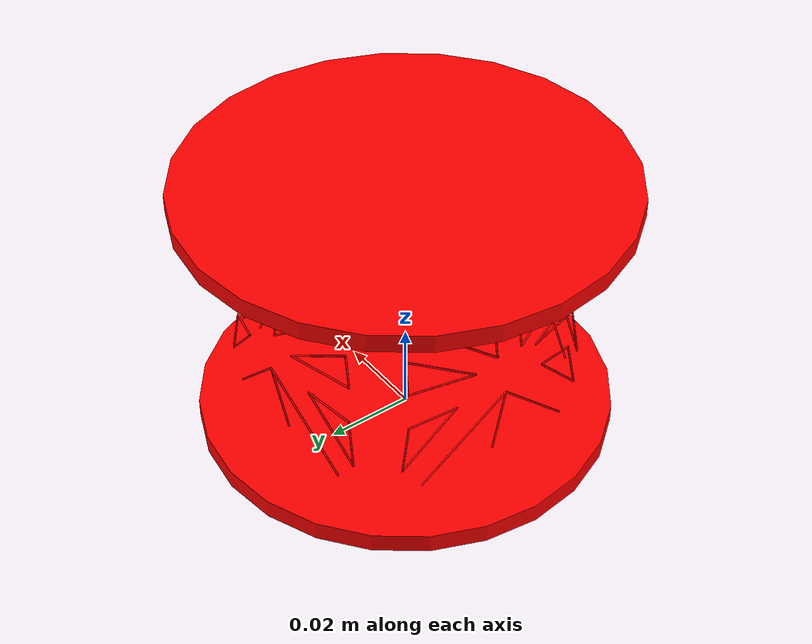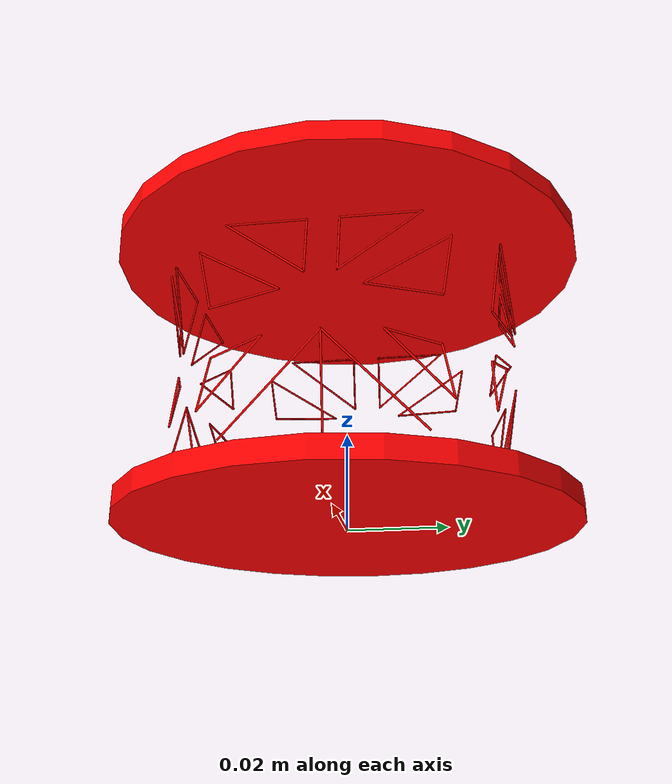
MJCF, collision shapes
<?xml version='1.0' encoding='utf-8'?>
<mujoco model="m1_module">
  <compiler angle="radian" coordinate="local" inertiafromgeom="false" balanceinertia="true" />
  <option timestep="0.001" gravity="0 0 -9.8" solver="Newton" />
  <size njmax="4000" nconmax="1000" />
  <default>
    <site type="sphere" size="0.0002" rgba="1 0 1 0" />
    <default class="vis_mesh">
      <geom type="mesh" contype="0" conaffinity="0" />
      </default>
    <default class="collision_capsule">
      <geom contype="1" conaffinity="1" solref="0.002 1" solimp="0.97 0.995 0.0005" friction="0.8 0.1 0.1" rgba="1 0 0 0" type="capsule" size="0.0002" margin="0.0001" />
      </default>
    <default class="collision_disk">
      <geom contype="1" conaffinity="1" solref="0.002 1" solimp="0.97 0.995 0.0005" friction="0.8 0.1 0.1" rgba="1 0 0 0" type="cylinder" />
      </default>
    <default class="m1">
      <joint springref="0" damping="4e-4" stiffness="0.015"  armature="2e-7" frictionloss="1e-3"/>
      <geom type="mesh" contype="0" conaffinity="0" />
      </default>
  </default>
  <asset>
    <mesh name="m1_seg2_m" file="../STL/rib_seg2.stl" scale="3.1039944 3.1039944 3.1039944" />
    <mesh name="m1_seg5L_m" file="../STL/rib_seg5L.stl" scale="3.1039944 3.1039944 3.1039944" />
    <mesh name="m1_seg5R_m" file="../STL/rib_seg5R.stl" scale="3.1039944 3.1039944 3.1039944" />
    <mesh name="m1_seg6_m" file="../STL/rib_seg6.stl" scale="3.1039944 3.1039944 3.1039944" />
    <mesh name="m1_seg4_m" file="../STL/rib_seg4.stl" scale="3.1039944 3.1039944 3.1039944" />
    <mesh name="m1_seg3L_m" file="../STL/rib_seg3L.stl" scale="3.1039944 3.1039944 3.1039944" />
    <mesh name="m1_seg3R_m" file="../STL/rib_seg3R.stl" scale="3.1039944 3.1039944 3.1039944" />
    <mesh name="m1_bottom" file="../STL/bottom_4x.stl" scale="3.1039944 3.1039944 3.1039944" />
    <mesh name="bottom1_col" file="../STL/bottom_collision.stl" scale="3.103994388566468 3.103994388566468 3.103994388566468" />
    <mesh name="m1_top" file="../STL/top_4x.stl" scale="3.103994388566468 3.103994388566468 3.103994388566468" />
  </asset>
  <worldbody>
  <body name="m1_bottom" pos="0 0 0" quat="1 0 0 0" childclass="m1">
    <geom mesh="m1_bottom"/>
    <geom name="disk1_bottom" class="collision_disk" pos="0 0 0.0021727961" size="0.046559916 0.0021727961" />
    <site name="rope1_1_bottom" pos="-0.0432525 -0.0115920 0"/>
    <site name="rope2_1_bottom" pos="0.0316620 -0.0316761 0"/>
    <site name="rope3_1_bottom" pos="0.0115879 0.0432623 0"/>
    <inertial mass="0.014848159" pos="0 0 0.0015855203" fullinertia="3.7139942e-08 3.7139942e-08 2.5438316e-11 0 0 0" />
    <body name="m1_seg2" pos="2.82567101e-05 -3.24512615e-02 1.86685601e-02" quat="9.99991490e-01 -4.12540915e-03 -1.52357895e-05 6.30362730e-06">
      <inertial mass="0.0015336127" pos="-1.9089565e-05 0.0014327107 -0.0046802027" fullinertia="7.0972903e-08 2.492955e-07 1.8493656e-07 0 0 -1.3991074e-08" />
      <joint name="m1_j_bottom_seg2" type="hinge" pos="-2.86542e-05 0.00296094 -0.0143462" axis="1 0 0" limited="true" range="-0.2 1.2" />
      <geom mesh="m1_seg2_m"/>
      <geom class="collision_capsule" fromto="0 0.0012415978 -0.0093119832 0 -0.0024831955 0.0093119832" />
      <geom class="collision_capsule" fromto="0.018623966 0.0012415978 -0.0093119832 0 -0.0024831955 0.0093119832" />
      <geom class="collision_capsule" fromto="-0.018623966 0.0012415978 -0.0093119832 0 -0.0024831955 0.0093119832" />
      <body name="m1_seg3L"  pos="-1.31683590e-02 5.04228292e-04 6.55915134e-03"  quat="9.99992509e-01 3.80275225e-03 -6.75333410e-04 2.53543553e-04">
        <inertial mass="0.00055767735" pos="-0.0043363422 0.0016619407 -0.0026744016" fullinertia="2.1622569e-08 3.7648708e-08 1.9078737e-08 -4.5788969e-09 1.2973541e-08 -1.7806821e-09" />
        <joint name="m1_j_seg2_seg3L" type="hinge" pos="-0.001022 -0.000563533 -0.00655227" axis="-0.67953742 0.14994959 -0.7181532" limited="true" range="0 2.3" />
        <geom mesh="m1_seg3L_m" />
        <geom class="collision_capsule" fromto="-0.008 0.002 0.0005 0.002 -0.001 0.003" />
        <geom class="collision_capsule" fromto="-0.008 0.002 0.0005 -0.01 0.0015 -0.01" />
        <geom class="collision_capsule" fromto="0.002 -0.001 0.003 -0.01 0.0015 -0.01"/>
        <body name="m1_seg4"  pos="-5.94925460e-04 -5.89429943e-04 1.34424211e-02"   quat="9.99998989e-01 -5.45000526e-04 1.28441048e-03 -2.75984413e-04">
          <inertial mass="0.00062738702" pos="-0.0043554318 0.0014518003 0.0014709209" fullinertia="2.0605036e-08 4.0446923e-08 2.3403251e-08 -4.0701306e-09 -1.1192859e-08 -1.2719158e-09" />
          <joint name="m1_j_seg3L_seg4" type="hinge" pos="0.00161419 0.00116527 -0.00688657" axis="-0.93308026 0.32845604 -0.14655325" limited="true" range="-2.3 0" />
          <geom mesh="m1_seg4_m"/>
          <geom class="collision_capsule" fromto="-0.01 0.0003 0.008 0.006 -0.002 -0.002" />
          <geom class="collision_capsule" fromto="-0.01 0.0003 0.008 -0.008 0.002 -0.003" />
          <geom class="collision_capsule" fromto="0.006 -0.002 -0.002 -0.008 0.002 -0.003"/>
          <body name="m1_seg5L"  pos="1.37447347e-02 -1.15027080e-03 6.95052670e-03" quat="-2.03688796e-04 -1.49606636e-03 -9.35921620e-04 9.99998422e-01">
            <inertial mass="0.00079689305" pos="0.0096278146 -0.0010697606 0.0037441622" fullinertia="2.3263971e-08 6.0098582e-08 3.8773285e-08 -2.2617749e-09 1.4539982e-08 -3.5542187e-09" />
            <joint name="m1_j_seg4_seg5L" type="hinge" pos="0.0153778 9.55141e-06 -2.86542e-05" axis="0.78792329 -0.098891322 0.60778072" limited="true" range="0 2.3" />
            <geom mesh="m1_seg5L_m"/>
            <geom class="collision_capsule" fromto="0.0031039944 -0.00062079888 0.0062079888 0.0031039944 0.0017415978 -0.0062079888" />
            <geom class="collision_capsule" fromto="0.018623966 -0.00062079888 0.0062079888 0.0031039944 -0.00062079888 0.0062079888" />
            <geom class="collision_capsule" fromto="0.018623966 -0.00062079888 0.0062079888 0.0031039944 0.0017415978 -0.0062079888" />
            <site name="m1_h5Ltop_b1" pos="0.0095896044 -0.0017956608 0.011404386" />
            <site name="m1_h5Ltop_b2" pos="0.018901588 -0.0017956608 0.011404386" />
            </body>
          </body>
        </body>
      <body name="m1_seg3R"   pos="1.31400352e-02 5.24306929e-04 6.56619006e-03" quat="2.70030059e-04 6.97410913e-04 -3.80717348e-03 9.99992473e-01">
        <inertial mass="0.00065893204" pos="-0.0043172527 -0.0016619407 -0.0026744016" fullinertia="2.5548464e-08 4.4183837e-08 2.2542767e-08 5.4102644e-09 1.5329084e-08 2.1039917e-09" />
        <joint name="m1_j_seg2_seg3R" type="hinge" pos="-0.00105066 0.000563533 -0.00656182" axis="-0.67798864 -0.1493788 -0.71973424" limited="true" range="-2.3 0" />
        <geom mesh="m1_seg3R_m" />
        <geom class="collision_capsule" fromto="-0.008 -0.002 0.0006 0.002 0.001 0.003" />
        <geom class="collision_capsule" fromto="-0.008 -0.002 0.0006 -0.01 -0.0015 -0.01" />
        <geom class="collision_capsule" fromto="0.002 0.001 0.003 -0.01 -0.0015 -0.01"/>
        <body name="m1_seg6"  pos="-5.68514536e-04 5.95035466e-04 1.34636207e-02" quat="3.18125138e-04 -1.28611439e-03 5.84129138e-04 -9.99998952e-01">
          <inertial mass="0.00062738702" pos="0.004393642 0.0014518003 0.0014900104" fullinertia="2.0605036e-08 4.0446923e-08 2.3403251e-08 4.0701306e-09 1.1192859e-08 -1.2719158e-09" />
          <joint name="m1_j_seg3R_seg6" type="hinge" pos="-0.00161419 0.00116527 -0.00687702" axis="0.93297932 0.3284205 -0.14727377" limited="true" range="0 2.3" />
          <geom mesh="m1_seg6_m" />
          <geom class="collision_capsule" fromto="0.01 0.0005 0.008 -0.006 -0.002 -0.002" />
          <geom class="collision_capsule" fromto="0.01 0.0005 0.008 0.008 0.0025 -0.003" />
          <geom class="collision_capsule" fromto="-0.006 -0.002 -0.002 0.008 0.0025 -0.003"/>
          <body name="m1_seg5R"  pos="-1.37544515e-02 -1.16536643e-03 6.90631225e-03" quat="2.80900148e-04 1.53293116e-03 -9.96463485e-04 9.99998289e-01">
            <inertial mass="0.00079637023" pos="-0.0095514253 -0.0010697606 0.0037441622" fullinertia="2.324883e-08 6.0059483e-08 3.8425162e-08 2.260303e-09 -1.4207618e-08 -3.5519038e-09" />
            <joint name="m1_j_seg5R_seg6" type="hinge" pos="-0.01538 -0.00000955 0.00002866" axis="-0.786101 -0.099797 0.609989" limited="true" range="-2.3 0"/>
            <geom mesh="m1_seg5R_m"/>
            <geom class="collision_capsule" fromto="-0.0031039944 -0.00062079888 0.0062079888 -0.0031039944 0.0017415978 -0.0062079888"/>
            <geom class="collision_capsule" fromto="-0.018623966 -0.00062079888 0.0062079888 -0.0031039944 -0.00062079888 0.0062079888"/>
            <geom class="collision_capsule" fromto="-0.018623966 -0.00062079888 0.0062079888 -0.0031039944 0.0017415978 -0.0062079888"/>
            <site name="m1_h5Rtop_b1" pos="-0.0095132151 -0.0017956608 0.011404386" />
            <site name="m1_h5Rtop_b2" pos="-0.018825198 -0.0017956608 0.011404386" />
            </body>
          </body>
        </body>
      </body>
    <body name="m1_seg2_r1" pos="0.032451262 2.825671e-05 0.01866856" quat="0.70709631 -0.0029063315 -0.0029278781 0.70710522">
        <inertial mass="0.0015336127" pos="-1.9089565e-05 0.0014327107 -0.0046802027" fullinertia="7.0972903e-08 2.492955e-07 1.8493656e-07 0 0 -1.3991074e-08" />
        <joint name="m1_j_bottom_seg2_r1" type="hinge" pos="-2.86542e-05 0.00296094 -0.0143462" axis="1 0 0" limited="true" range="-0.2 1.2" />
        <geom mesh="m1_seg2_m"/>
        <geom class="collision_capsule" fromto="0 0.0012415978 -0.0093119832 0 -0.0024831955 0.0093119832" />
        <geom class="collision_capsule" fromto="0.018623966 0.0012415978 -0.0093119832 0 -0.0024831955 0.0093119832" />
        <geom class="collision_capsule" fromto="-0.018623966 0.0012415978 -0.0093119832 0 -0.0024831955 0.0093119832" />
        <body name="m1_seg3L_r1" pos="-0.013168359 0.00050422829 0.0065591513" quat="0.99999251 0.0038027522 -0.00067533341 0.00025354355">
          <inertial mass="0.00055767735" pos="-0.0043363422 0.0016619407 -0.0026744016" fullinertia="2.1622569e-08 3.7648708e-08 1.9078737e-08 -4.5788969e-09 1.2973541e-08 -1.7806821e-09" />
          <joint name="m1_j_seg2_seg3L_r1" type="hinge" pos="-0.001022 -0.000563533 -0.00655227" axis="-0.67953742 0.14994959 -0.7181532" limited="true" range="0 2.3" />
          <geom mesh="m1_seg3L_m" />
          <geom class="collision_capsule" fromto="-0.008 0.002 0.0005 0.002 -0.001 0.003" />
          <geom class="collision_capsule" fromto="-0.008 0.002 0.0005 -0.01 0.0015 -0.01" />
          <geom class="collision_capsule" fromto="0.002 -0.001 0.003 -0.01 0.0015 -0.01"/>
          <body name="m1_seg4_r1" pos="-0.00059492546 -0.00058942994 0.013442421" quat="0.99999899 -0.00054500053 0.0012844105 -0.00027598441">
            <inertial mass="0.00062738702" pos="-0.0043554318 0.0014518003 0.0014709209" fullinertia="2.0605036e-08 4.0446923e-08 2.3403251e-08 -4.0701306e-09 -1.1192859e-08 -1.2719158e-09" />
            <joint name="m1_j_seg3L_seg4_r1" type="hinge" pos="0.00161419 0.00116527 -0.00688657" axis="-0.93308026 0.32845604 -0.14655325" limited="true" range="-2.3 0" />
            <geom mesh="m1_seg4_m" />
            <geom class="collision_capsule" fromto="-0.01 0.0003 0.008 0.006 -0.002 -0.002" />
            <geom class="collision_capsule" fromto="-0.01 0.0003 0.008 -0.008 0.002 -0.003" />
            <geom class="collision_capsule" fromto="0.006 -0.002 -0.002 -0.008 0.002 -0.003"/>
            <body name="m1_seg5L_r1" pos="0.013744735 -0.0011502708 0.0069505267" quat="-0.0002036888 -0.0014960664 -0.00093592162 0.99999842">
              <inertial mass="0.00079689305" pos="0.0096278146 -0.0010697606 0.0037441622" fullinertia="2.3263971e-08 6.0098582e-08 3.8773285e-08 -2.2617749e-09 1.4539982e-08 -3.5542187e-09" />
              <joint name="m1_j_seg4_seg5L_r1" type="hinge" pos="0.0153778 9.55141e-06 -2.86542e-05" axis="0.78792329 -0.098891322 0.60778072" limited="true" range="0 2.3" />
              <geom mesh="m1_seg5L_m"/>
              <geom class="collision_capsule" fromto="0.0031039944 -0.00062079888 0.0062079888 0.0031039944 0.0017415978 -0.0062079888" />
              <geom class="collision_capsule" fromto="0.018623966 -0.00062079888 0.0062079888 0.0031039944 -0.00062079888 0.0062079888" />
              <geom class="collision_capsule" fromto="0.018623966 -0.00062079888 0.0062079888 0.0031039944 0.0017415978 -0.0062079888" />
              <site name="m1_h5Ltop_b1_r1" pos="0.0095896044 -0.0017956608 0.011404386" />
              <site name="m1_h5Ltop_b2_r1" pos="0.018901588 -0.0017956608 0.011404386" />
            </body>
          </body>
        </body>
        <body name="m1_seg3R_r1" pos="0.013140035 0.00052430693 0.0065661901" quat="0.00027003006 0.00069741091 -0.0038071735 0.99999247">
          <inertial mass="0.00065893204" pos="-0.0043172527 -0.0016619407 -0.0026744016" fullinertia="2.5548464e-08 4.4183837e-08 2.2542767e-08 5.4102644e-09 1.5329084e-08 2.1039917e-09" />
          <joint name="m1_j_seg2_seg3R_r1" type="hinge" pos="-0.00105066 0.000563533 -0.00656182" axis="-0.67798864 -0.1493788 -0.71973424" limited="true" range="-2.3 0" />
          <geom mesh="m1_seg3R_m" />
          <geom class="collision_capsule" fromto="-0.008 -0.002 0.0006 0.002 0.001 0.003" />
          <geom class="collision_capsule" fromto="-0.008 -0.002 0.0006 -0.01 -0.0015 -0.01" />
          <geom class="collision_capsule" fromto="0.002 0.001 0.003 -0.01 -0.0015 -0.01"/>
          <body name="m1_seg6_r1" pos="-0.00056851454 0.00059503547 0.013463621" quat="0.00031812514 -0.0012861144 0.00058412914 -0.99999895">
            <inertial mass="0.00062738702" pos="0.004393642 0.0014518003 0.0014900104" fullinertia="2.0605036e-08 4.0446923e-08 2.3403251e-08 4.0701306e-09 1.1192859e-08 -1.2719158e-09" />
            <joint name="m1_j_seg3R_seg6_r1" type="hinge" pos="-0.00161419 0.00116527 -0.00687702" axis="0.93297932 0.3284205 -0.14727377" limited="true" range="0 2.3" />
            <geom mesh="m1_seg6_m" />
            <geom class="collision_capsule" fromto="0.01 0.0005 0.008 -0.006 -0.002 -0.002" />
            <geom class="collision_capsule" fromto="0.01 0.0005 0.008 0.008 0.0025 -0.003" />
            <geom class="collision_capsule" fromto="-0.006 -0.002 -0.002 0.008 0.0025 -0.003"/>
            <body name="m1_seg5R_r1" pos="-0.013754452 -0.0011653664 0.0069063123" quat="0.00028090015 0.0015329312 -0.00099646348 0.99999829">
              <inertial mass="0.00079637023" pos="-0.0095514253 -0.0010697606 0.0037441622" fullinertia="2.324883e-08 6.0059483e-08 3.8425162e-08 2.260303e-09 -1.4207618e-08 -3.5519038e-09" />
              <joint name="m1_j_seg5R_seg6_r1"   type="hinge" pos="-0.01538 -0.00000955 0.00002866"  axis="-0.786101 -0.099797 0.609989"   limited="true" range="-2.3 0"/>
              <geom mesh="m1_seg5R_m"/>
              <geom class="collision_capsule" fromto="-0.0031039944 -0.00062079888 0.0062079888 -0.0031039944 0.0017415978 -0.0062079888"/>
              <geom class="collision_capsule" fromto="-0.018623966 -0.00062079888 0.0062079888 -0.0031039944 -0.00062079888 0.0062079888"/>
              <geom class="collision_capsule" fromto="-0.018623966 -0.00062079888 0.0062079888 -0.0031039944 0.0017415978 -0.0062079888"/>
              <site name="m1_h5Rtop_b1_r1" pos="-0.0095132151 -0.0017956608 0.011404386" />
              <site name="m1_h5Rtop_b2_r1" pos="-0.018825198 -0.0017956608 0.011404386" />
            </body>
          </body>
        </body>
      </body>
    <body name="m1_seg2_r2" pos="-2.825671e-05 0.032451262 0.01866856" quat="-6.3036273e-06 1.523579e-05 -0.0041254092 0.99999149">
        <inertial mass="0.0015336127" pos="-1.9089565e-05 0.0014327107 -0.0046802027" fullinertia="7.0972903e-08 2.492955e-07 1.8493656e-07 0 0 -1.3991074e-08" />
        <joint name="m1_j_bottom_seg2_r2" type="hinge" pos="-2.86542e-05 0.00296094 -0.0143462" axis="1 0 0" limited="true" range="-0.2 1.2" />
        <geom mesh="m1_seg2_m"/>
        <geom class="collision_capsule" fromto="0 0.0012415978 -0.0093119832 0 -0.0024831955 0.0093119832" />
        <geom class="collision_capsule" fromto="0.018623966 0.0012415978 -0.0093119832 0 -0.0024831955 0.0093119832" />
        <geom class="collision_capsule" fromto="-0.018623966 0.0012415978 -0.0093119832 0 -0.0024831955 0.0093119832" />
        <body name="m1_seg3L_r2" pos="-0.013168359 0.00050422829 0.0065591513" quat="0.99999251 0.0038027522 -0.00067533341 0.00025354355">
          <inertial mass="0.00055767735" pos="-0.0043363422 0.0016619407 -0.0026744016" fullinertia="2.1622569e-08 3.7648708e-08 1.9078737e-08 -4.5788969e-09 1.2973541e-08 -1.7806821e-09" />
          <joint name="m1_j_seg2_seg3L_r2" type="hinge" pos="-0.001022 -0.000563533 -0.00655227" axis="-0.67953742 0.14994959 -0.7181532" limited="true" range="0 2.3" />
          <geom mesh="m1_seg3L_m" />
          <geom class="collision_capsule" fromto="-0.008 0.002 0.0005 0.002 -0.001 0.003" />
          <geom class="collision_capsule" fromto="-0.008 0.002 0.0005 -0.01 0.0015 -0.01" />
          <geom class="collision_capsule" fromto="0.002 -0.001 0.003 -0.01 0.0015 -0.01"/>
          <body name="m1_seg4_r2" pos="-0.00059492546 -0.00058942994 0.013442421" quat="0.99999899 -0.00054500053 0.0012844105 -0.00027598441">
            <inertial mass="0.00062738702" pos="-0.0043554318 0.0014518003 0.0014709209" fullinertia="2.0605036e-08 4.0446923e-08 2.3403251e-08 -4.0701306e-09 -1.1192859e-08 -1.2719158e-09" />
            <joint name="m1_j_seg3L_seg4_r2" type="hinge" pos="0.00161419 0.00116527 -0.00688657" axis="-0.93308026 0.32845604 -0.14655325" limited="true" range="-2.3 0" />
            <geom mesh="m1_seg4_m" />
            <geom class="collision_capsule" fromto="-0.01 0.0003 0.008 0.006 -0.002 -0.002" />
            <geom class="collision_capsule" fromto="-0.01 0.0003 0.008 -0.008 0.002 -0.003" />
            <geom class="collision_capsule" fromto="0.006 -0.002 -0.002 -0.008 0.002 -0.003"/>
            <body name="m1_seg5L_r2" pos="0.013744735 -0.0011502708 0.0069505267" quat="-0.0002036888 -0.0014960664 -0.00093592162 0.99999842">
              <inertial mass="0.00079689305" pos="0.0096278146 -0.0010697606 0.0037441622" fullinertia="2.3263971e-08 6.0098582e-08 3.8773285e-08 -2.2617749e-09 1.4539982e-08 -3.5542187e-09" />
              <joint name="m1_j_seg4_seg5L_r2" type="hinge" pos="0.0153778 9.55141e-06 -2.86542e-05" axis="0.78792329 -0.098891322 0.60778072" limited="true" range="0 2.3" />
              <geom mesh="m1_seg5L_m"/>
              <geom class="collision_capsule" fromto="0.0031039944 -0.00062079888 0.0062079888 0.0031039944 0.0017415978 -0.0062079888" />
              <geom class="collision_capsule" fromto="0.018623966 -0.00062079888 0.0062079888 0.0031039944 -0.00062079888 0.0062079888" />
              <geom class="collision_capsule" fromto="0.018623966 -0.00062079888 0.0062079888 0.0031039944 0.0017415978 -0.0062079888" />
              <site name="m1_h5Ltop_b1_r2" pos="0.0095896044 -0.0017956608 0.011404386" />
              <site name="m1_h5Ltop_b2_r2" pos="0.018901588 -0.0017956608 0.011404386" />
            </body>
          </body>
        </body>
        <body name="m1_seg3R_r2" pos="0.013140035 0.00052430693 0.0065661901" quat="0.00027003006 0.00069741091 -0.0038071735 0.99999247">
          <inertial mass="0.00065893204" pos="-0.0043172527 -0.0016619407 -0.0026744016" fullinertia="2.5548464e-08 4.4183837e-08 2.2542767e-08 5.4102644e-09 1.5329084e-08 2.1039917e-09" />
          <joint name="m1_j_seg2_seg3R_r2" type="hinge" pos="-0.00105066 0.000563533 -0.00656182" axis="-0.67798864 -0.1493788 -0.71973424" limited="true" range="-2.3 0" />
          <geom mesh="m1_seg3R_m" />
          <geom class="collision_capsule" fromto="-0.008 -0.002 0.0006 0.002 0.001 0.003" />
          <geom class="collision_capsule" fromto="-0.008 -0.002 0.0006 -0.01 -0.0015 -0.01" />
          <geom class="collision_capsule" fromto="0.002 0.001 0.003 -0.01 -0.0015 -0.01"/>
          <body name="m1_seg6_r2" pos="-0.00056851454 0.00059503547 0.013463621" quat="0.00031812514 -0.0012861144 0.00058412914 -0.99999895">
            <inertial mass="0.00062738702" pos="0.004393642 0.0014518003 0.0014900104" fullinertia="2.0605036e-08 4.0446923e-08 2.3403251e-08 4.0701306e-09 1.1192859e-08 -1.2719158e-09" />
            <joint name="m1_j_seg3R_seg6_r2" type="hinge" pos="-0.00161419 0.00116527 -0.00687702" axis="0.93297932 0.3284205 -0.14727377" limited="true" range="0 2.3" />
            <geom mesh="m1_seg6_m" />
            <geom class="collision_capsule" fromto="0.01 0.0005 0.008 -0.006 -0.002 -0.002" />
            <geom class="collision_capsule" fromto="0.01 0.0005 0.008 0.008 0.0025 -0.003" />
            <geom class="collision_capsule" fromto="-0.006 -0.002 -0.002 0.008 0.0025 -0.003"/>
            <body name="m1_seg5R_r2" pos="-0.013754452 -0.0011653664 0.0069063123" quat="0.00028090015 0.0015329312 -0.00099646348 0.99999829">
              <inertial mass="0.00079637023" pos="-0.0095514253 -0.0010697606 0.0037441622" fullinertia="2.324883e-08 6.0059483e-08 3.8425162e-08 2.260303e-09 -1.4207618e-08 -3.5519038e-09" />
              <joint name="m1_j_seg5R_seg6_r2" type="hinge" pos="-0.01538 -0.00000955 0.00002866" axis="-0.786101 -0.099797 0.609989" limited="true" range="-2.3 0"/>
              <geom mesh="m1_seg5R_m"/>
              <geom class="collision_capsule" fromto="-0.0031039944 -0.00062079888 0.0062079888 -0.0031039944 0.0017415978 -0.0062079888"/>
              <geom class="collision_capsule" fromto="-0.018623966 -0.00062079888 0.0062079888 -0.0031039944 -0.00062079888 0.0062079888"/>
              <geom class="collision_capsule" fromto="-0.018623966 -0.00062079888 0.0062079888 -0.0031039944 0.0017415978 -0.0062079888"/>
              <site name="m1_h5Rtop_b1_r2" pos="-0.0095132151 -0.0017956608 0.011404386" />
              <site name="m1_h5Rtop_b2_r2" pos="-0.018825198 -0.0017956608 0.011404386" />
            </body>
          </body>
        </body>
      </body>
    <body name="m1_seg2_r3" pos="-0.032451262 -2.825671e-05 0.01866856" quat="-0.70710522 0.0029278781 -0.0029063315 0.70709631">
        <inertial mass="0.0015336127" pos="-1.9089565e-05 0.0014327107 -0.0046802027" fullinertia="7.0972903e-08 2.492955e-07 1.8493656e-07 0 0 -1.3991074e-08" />
        <joint name="m1_j_bottom_seg2_r3" type="hinge" pos="-2.86542e-05 0.00296094 -0.0143462" axis="1 0 0" limited="true" range="-0.2 1.2" />
        <geom mesh="m1_seg2_m"  />
        <geom class="collision_capsule" fromto="0 0.0012415978 -0.0093119832 0 -0.0024831955 0.0093119832" />
        <geom class="collision_capsule" fromto="0.018623966 0.0012415978 -0.0093119832 0 -0.0024831955 0.0093119832" />
        <geom class="collision_capsule" fromto="-0.018623966 0.0012415978 -0.0093119832 0 -0.0024831955 0.0093119832" />
        <body name="m1_seg3L_r3" pos="-0.013168359 0.00050422829 0.0065591513" quat="0.99999251 0.0038027522 -0.00067533341 0.00025354355">
          <inertial mass="0.00055767735" pos="-0.0043363422 0.0016619407 -0.0026744016" fullinertia="2.1622569e-08 3.7648708e-08 1.9078737e-08 -4.5788969e-09 1.2973541e-08 -1.7806821e-09" />
          <joint name="m1_j_seg2_seg3L_r3" type="hinge" pos="-0.001022 -0.000563533 -0.00655227" axis="-0.67953742 0.14994959 -0.7181532" limited="true" range="0 2.3" />
          <geom mesh="m1_seg3L_m" />
          <geom class="collision_capsule" fromto="-0.008 0.002 0.0005 0.002 -0.001 0.003" />
          <geom class="collision_capsule" fromto="-0.008 0.002 0.0005 -0.01 0.0015 -0.01" />
          <geom class="collision_capsule" fromto="0.002 -0.001 0.003 -0.01 0.0015 -0.01"/>
          <body name="m1_seg4_r3" pos="-0.00059492546 -0.00058942994 0.013442421" quat="0.99999899 -0.00054500053 0.0012844105 -0.00027598441">
            <inertial mass="0.00062738702" pos="-0.0043554318 0.0014518003 0.0014709209" fullinertia="2.0605036e-08 4.0446923e-08 2.3403251e-08 -4.0701306e-09 -1.1192859e-08 -1.2719158e-09" />
            <joint name="m1_j_seg3L_seg4_r3" type="hinge" pos="0.00161419 0.00116527 -0.00688657" axis="-0.93308026 0.32845604 -0.14655325" limited="true" range="-2.3 0" />
            <geom mesh="m1_seg4_m" />
            <geom class="collision_capsule" fromto="-0.01 0.0003 0.008 0.006 -0.002 -0.002" />
            <geom class="collision_capsule" fromto="-0.01 0.0003 0.008 -0.008 0.002 -0.003" />
            <geom class="collision_capsule" fromto="0.006 -0.002 -0.002 -0.008 0.002 -0.003"/>
            <body name="m1_seg5L_r3" pos="0.013744735 -0.0011502708 0.0069505267" quat="-0.0002036888 -0.0014960664 -0.00093592162 0.99999842">
              <inertial mass="0.00079689305" pos="0.0096278146 -0.0010697606 0.0037441622" fullinertia="2.3263971e-08 6.0098582e-08 3.8773285e-08 -2.2617749e-09 1.4539982e-08 -3.5542187e-09" />
              <joint name="m1_j_seg4_seg5L_r3" type="hinge" pos="0.0153778 9.55141e-06 -2.86542e-05" axis="0.78792329 -0.098891322 0.60778072" limited="true" range="0 2.3" />
              <geom mesh="m1_seg5L_m"/>
              <geom class="collision_capsule" fromto="0.0031039944 -0.00062079888 0.0062079888 0.0031039944 0.0017415978 -0.0062079888" />
              <geom class="collision_capsule" fromto="0.018623966 -0.00062079888 0.0062079888 0.0031039944 -0.00062079888 0.0062079888" />
              <geom class="collision_capsule" fromto="0.018623966 -0.00062079888 0.0062079888 0.0031039944 0.0017415978 -0.0062079888" />
              <site name="m1_h5Ltop_b1_r3" pos="0.0095896044 -0.0017956608 0.011404386" />
              <site name="m1_h5Ltop_b2_r3" pos="0.018901588 -0.0017956608 0.011404386" />
            </body>
          </body>
      </body>
      <body name="m1_seg3R_r3" pos="0.013140035 0.00052430693 0.0065661901" quat="0.00027003006 0.00069741091 -0.0038071735 0.99999247">
          <inertial mass="0.00065893204" pos="-0.0043172527 -0.0016619407 -0.0026744016" fullinertia="2.5548464e-08 4.4183837e-08 2.2542767e-08 5.4102644e-09 1.5329084e-08 2.1039917e-09" />
          <joint name="m1_j_seg2_seg3R_r3" type="hinge" pos="-0.00105066 0.000563533 -0.00656182" axis="-0.67798864 -0.1493788 -0.71973424" limited="true" range="-2.3 0" />
          <geom mesh="m1_seg3R_m" />
          <geom class="collision_capsule" fromto="-0.008 -0.002 0.0006 0.002 0.001 0.003" />
          <geom class="collision_capsule" fromto="-0.008 -0.002 0.0006 -0.01 -0.0015 -0.01" />
          <geom class="collision_capsule" fromto="0.002 0.001 0.003 -0.01 -0.0015 -0.01"/>
          <body name="m1_seg6_r3" pos="-0.00056851454 0.00059503547 0.013463621" quat="0.00031812514 -0.0012861144 0.00058412914 -0.99999895">
            <inertial mass="0.00062738702" pos="0.004393642 0.0014518003 0.0014900104" fullinertia="2.0605036e-08 4.0446923e-08 2.3403251e-08 4.0701306e-09 1.1192859e-08 -1.2719158e-09" />
            <joint name="m1_j_seg3R_seg6_r3" type="hinge" pos="-0.00161419 0.00116527 -0.00687702" axis="0.93297932 0.3284205 -0.14727377" limited="true" range="0 2.3" />
            <geom mesh="m1_seg6_m" />
            <geom class="collision_capsule" fromto="0.01 0.0005 0.008 -0.006 -0.002 -0.002" />
            <geom class="collision_capsule" fromto="0.01 0.0005 0.008 0.008 0.0025 -0.003" />
            <geom class="collision_capsule" fromto="-0.006 -0.002 -0.002 0.008 0.0025 -0.003"/>
            <body name="m1_seg5R_r3" pos="-0.013754452 -0.0011653664 0.0069063123" quat="0.00028090015 0.0015329312 -0.00099646348 0.99999829">
              <inertial mass="0.00079637023" pos="-0.0095514253 -0.0010697606 0.0037441622" fullinertia="2.324883e-08 6.0059483e-08 3.8425162e-08 2.260303e-09 -1.4207618e-08 -3.5519038e-09" />
              <joint name="m1_j_seg5R_seg6_r3"  type="hinge" pos="-0.01538 -0.00000955 0.00002866" axis="-0.786101 -0.099797 0.609989" limited="true" range="-2.3 0"/>
              <geom mesh="m1_seg5R_m"/>
              <geom class="collision_capsule" fromto="-0.0031039944 -0.00062079888 0.0062079888 -0.0031039944 0.0017415978 -0.0062079888"/>
              <geom class="collision_capsule" fromto="-0.018623966 -0.00062079888 0.0062079888 -0.0031039944 -0.00062079888 0.0062079888"/>
              <geom class="collision_capsule" fromto="-0.018623966 -0.00062079888 0.0062079888 -0.0031039944 0.0017415978 -0.0062079888"/>
              <site name="m1_h5Rtop_b1_r3" pos="-0.0095132151 -0.0017956608 0.011404386" />
              <site name="m1_h5Rtop_b2_r3" pos="-0.018825198 -0.0017956608 0.011404386" />
            </body>
          </body>
      </body>
    <body name="m1_top" pos="0 0.032 0.043"  quat="9.99993534e-01 3.59611676e-03 1.24688697e-05 -2.45245067e-06" childclass="m1">
            <inertial mass="0.017357707" pos="-5.7299736e-05 0 -0.0015664308" fullinertia="1.5358384e-05 1.5419944e-05 3.0745512e-05 0 1.526299e-09 0" />
            <geom class="vis_mesh" mesh="m1_top" />
            <geom name="disk1_top" class="collision_disk" pos="0 0 -0.0018623966" size="0.04966391 0.002" />
            <joint name="m1_top_tx" type="slide" axis="1 0 0" />
            <joint name="m1_top_ty" type="slide" axis="0 1 0" />
            <joint name="m1_top_tz" type="slide" axis="0 0 1" />
            <joint name="m1_top_rx" type="hinge" axis="1 0 0" />
            <joint name="m1_top_ry" type="hinge" axis="0 1 0" />
            <joint name="m1_top_rz" type="hinge" axis="0 0 1" />
            <site name="m1_h5Ltop_a1" pos="0.031978126 -0.0095514253 -0.0042408323" />
            <site name="m1_h5Ltop_a2" pos="0.031978126 -0.018863408 -0.0042408323" />
            <site name="m1_h5Rtop_a1" pos="0.031978126 0.0095514253 -0.0042408323" />
            <site name="m1_h5Rtop_a2" pos="0.031978126 0.018863408 -0.0042408323" />
            <site name="m1_h5Ltop_a1_r1" pos="0.0095514253 0.031978126 -0.0042408323" />
            <site name="m1_h5Ltop_a2_r1" pos="0.018863408 0.031978126 -0.0042408323" />
            <site name="m1_h5Rtop_a1_r1" pos="-0.0095514253 0.031978126 -0.0042408323" />
            <site name="m1_h5Rtop_a2_r1" pos="-0.018863408 0.031978126 -0.0042408323" />
            <site name="m1_h5Ltop_a1_r2" pos="-0.031978126 0.0095514253 -0.0042408323" />
            <site name="m1_h5Ltop_a2_r2" pos="-0.031978126 0.018863408 -0.0042408323" />
            <site name="m1_h5Rtop_a1_r2" pos="-0.031978126 -0.0095514253 -0.0042408323" />
            <site name="m1_h5Rtop_a2_r2" pos="-0.031978126 -0.018863408 -0.0042408323" />
            <site name="m1_h5Ltop_a1_r3" pos="-0.0095514253 -0.031978126 -0.0042408323" />
            <site name="m1_h5Ltop_a2_r3" pos="-0.018863408 -0.031978126 -0.0042408323" />
            <site name="m1_h5Rtop_a1_r3" pos="0.0095514253 -0.031978126 -0.0042408323" />
            <site name="m1_h5Rtop_a2_r3" pos="0.018863408 -0.031978126 -0.0042408323" />
    </body>
    </body>
    </body>
  </worldbody>
  <tendon>
    <fixed name="m1_fold_mode">
      <joint joint="m1_j_bottom_seg2" coef=" 1" />
      <joint joint="m1_j_seg2_seg3L" coef=" 1" />
      <joint joint="m1_j_seg4_seg5L" coef=" 1" />
      <joint joint="m1_j_seg2_seg3R" coef=" 1" />
      <joint joint="m1_j_seg3R_seg6" coef="-1" />
      <joint joint="m1_j_seg3L_seg4" coef="-1" />
      <joint joint="m1_j_seg5R_seg6" coef="1" />
      <joint joint="m1_j_bottom_seg2_r1" coef=" 1" />
      <joint joint="m1_j_seg2_seg3L_r1" coef=" 1" />
      <joint joint="m1_j_seg4_seg5L_r1" coef=" 1" />
      <joint joint="m1_j_seg2_seg3R_r1" coef=" 1" />
      <joint joint="m1_j_seg3R_seg6_r1" coef="-1" />
      <joint joint="m1_j_seg3L_seg4_r1" coef="-1" />
      <joint joint="m1_j_seg5R_seg6_r1" coef="1" />
      <joint joint="m1_j_bottom_seg2_r2" coef=" 1" />
      <joint joint="m1_j_seg2_seg3L_r2" coef=" 1" />
      <joint joint="m1_j_seg4_seg5L_r2" coef=" 1" />
      <joint joint="m1_j_seg2_seg3R_r2" coef=" 1" />
      <joint joint="m1_j_seg3R_seg6_r2" coef="-1" />
      <joint joint="m1_j_seg3L_seg4_r2" coef="-1" />
      <joint joint="m1_j_seg5R_seg6_r2" coef="1" />
      <joint joint="m1_j_bottom_seg2_r3" coef=" 1" />
      <joint joint="m1_j_seg2_seg3L_r3" coef=" 1" />
      <joint joint="m1_j_seg4_seg5L_r3" coef=" 1" />
      <joint joint="m1_j_seg2_seg3R_r3" coef=" 1" />
      <joint joint="m1_j_seg3R_seg6_r3" coef="-1" />
      <joint joint="m1_j_seg3L_seg4_r3" coef="-1" />
      <joint joint="m1_j_seg5R_seg6_r3" coef="1" />
      </fixed>
  </tendon>
  <equality>
    <weld body1="m1_seg5L" body2="m1_seg5R" solref="0.01 1" solimp="0.95 0.99 0.002" />
    <connect site1="m1_h5Ltop_a1" site2="m1_h5Ltop_b1" solref="0.001 1" solimp="0.99 0.999 0.001"  />
    <connect site1="m1_h5Ltop_a2" site2="m1_h5Ltop_b2" solref="0.001 1" solimp="0.99 0.999 0.001" />
    <connect site1="m1_h5Rtop_a1" site2="m1_h5Rtop_b1" solref="0.001 1" solimp="0.99 0.999 0.001" />
    <connect site1="m1_h5Rtop_a2" site2="m1_h5Rtop_b2" solref="0.001 1" solimp="0.99 0.999 0.001" />
    <weld body1="m1_seg5L_r1" body2="m1_seg5R_r1" solref="0.01 1" solimp="0.95 0.99 0.002"/>
    <connect site1="m1_h5Ltop_a1_r1" site2="m1_h5Ltop_b1_r1" solref="0.001 1" solimp="0.99 0.999 0.001" />
    <connect site1="m1_h5Ltop_a2_r1" site2="m1_h5Ltop_b2_r1" solref="0.001 1" solimp="0.99 0.999 0.001" />
    <connect site1="m1_h5Rtop_a1_r1" site2="m1_h5Rtop_b1_r1" solref="0.001 1" solimp="0.99 0.999 0.001" />
    <connect site1="m1_h5Rtop_a2_r1" site2="m1_h5Rtop_b2_r1" solref="0.001 1" solimp="0.99 0.999 0.001" />
    <weld body1="m1_seg5L_r2" body2="m1_seg5R_r2" solref="0.01 1" solimp="0.95 0.99 0.002" />
    <connect site1="m1_h5Ltop_a1_r2" site2="m1_h5Ltop_b1_r2" solref="0.001 1" solimp="0.99 0.999 0.001" />
    <connect site1="m1_h5Ltop_a2_r2" site2="m1_h5Ltop_b2_r2" solref="0.001 1" solimp="0.99 0.999 0.001"  />
    <connect site1="m1_h5Rtop_a1_r2" site2="m1_h5Rtop_b1_r2" solref="0.001 1" solimp="0.99 0.999 0.001" />
    <connect site1="m1_h5Rtop_a2_r2" site2="m1_h5Rtop_b2_r2" solref="0.001 1" solimp="0.99 0.999 0.001"  />
    <weld body1="m1_seg5L_r3" body2="m1_seg5R_r3" solref="0.01 1" solimp="0.95 0.99 0.002"/>
    <connect site1="m1_h5Ltop_a1_r3" site2="m1_h5Ltop_b1_r3" solref="0.001 1" solimp="0.99 0.999 0.001" />
    <connect site1="m1_h5Ltop_a2_r3" site2="m1_h5Ltop_b2_r3" solref="0.001 1" solimp="0.99 0.999 0.001" />
    <connect site1="m1_h5Rtop_a1_r3" site2="m1_h5Rtop_b1_r3" solref="0.001 1" solimp="0.99 0.999 0.001" />
    <connect site1="m1_h5Rtop_a2_r3" site2="m1_h5Rtop_b2_r3" solref="0.001 1" solimp="0.99 0.999 0.001" />
  </equality>
</mujoco>
